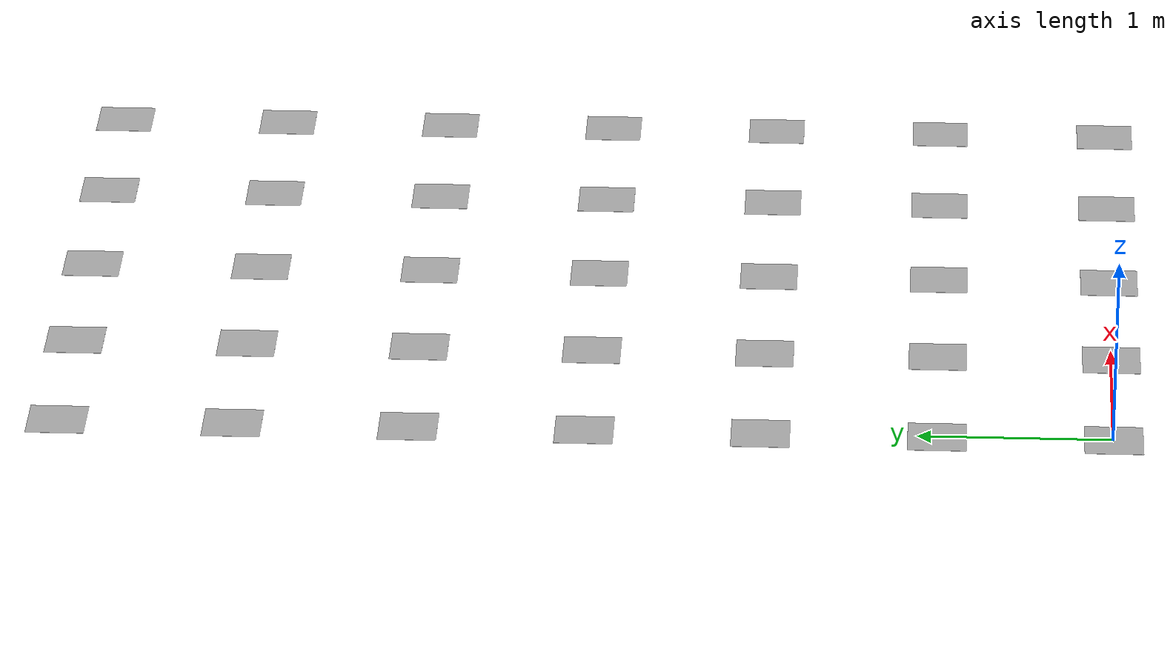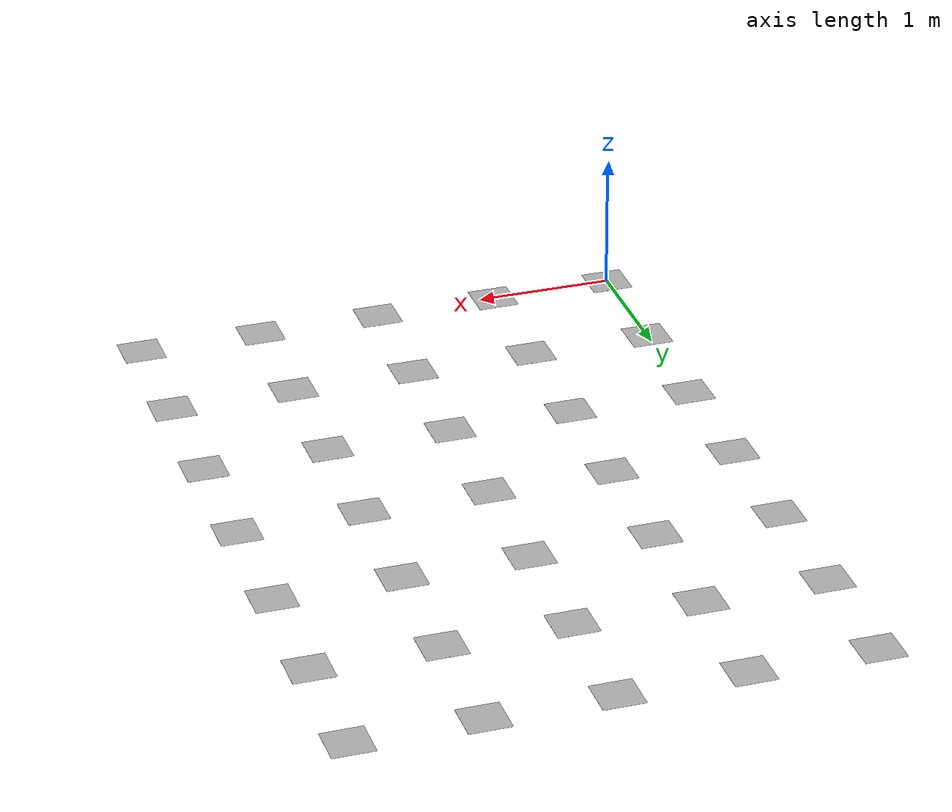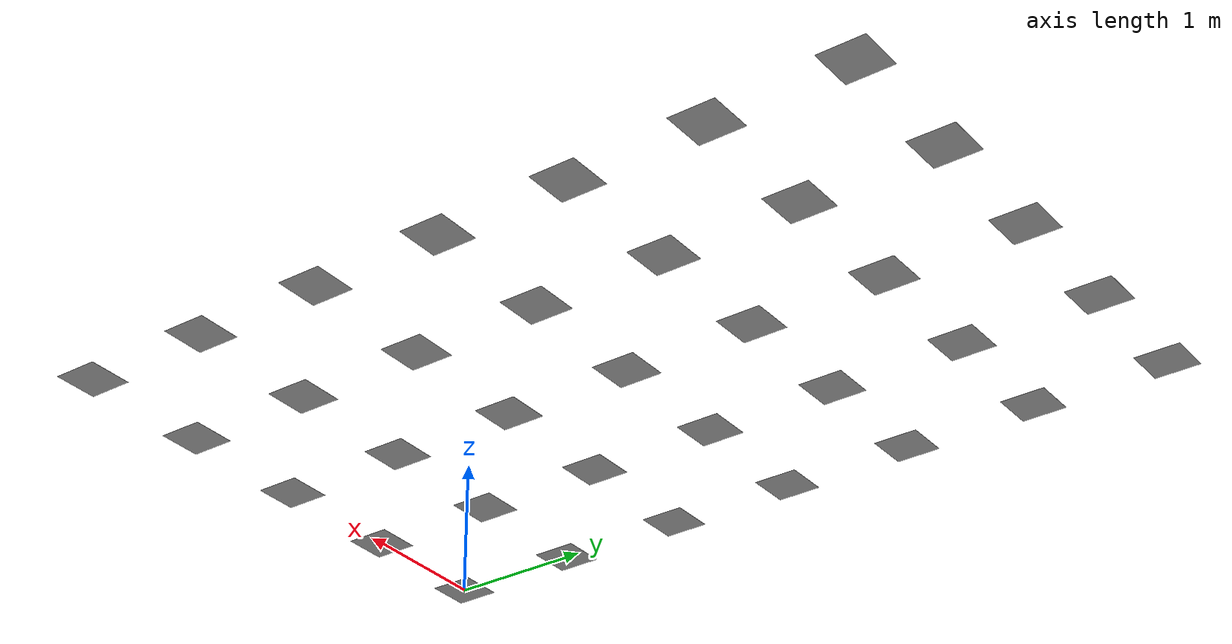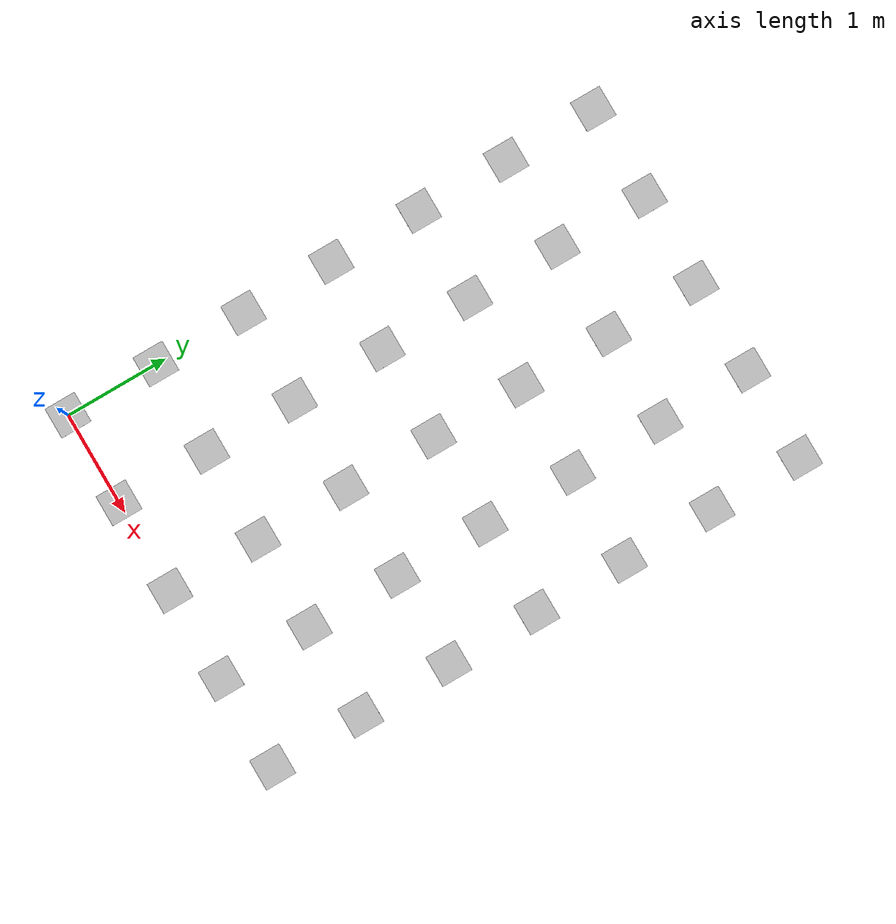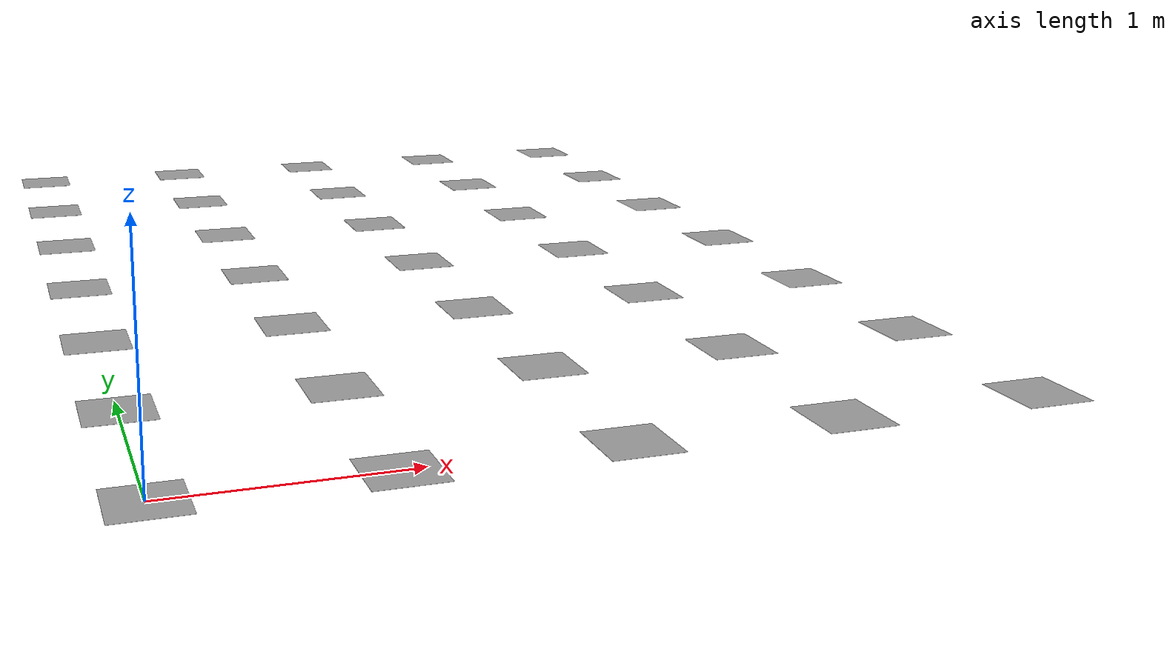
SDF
<?xml version="1.0"?>
<sdf version="1.5">
    <model name="aruco_2_99">
        <static>true</static>
        <link name="aruco_2_99_link">

<visual name="visual_marker_1">
    <pose>0.0 0.0 0.0 0.0 0.0 1.57079632679</pose>
    <cast_shadows>false</cast_shadows>
    <geometry>
        <box>
            <size>0.3 0.3 1e-3</size>
        </box>
    </geometry>
    <material>
        <script>
            <uri>model://aruco_cmit_txt/materials/scripts</uri>
            <uri>model://aruco_cmit_txt/materials/textures/</uri>
            <name>aruco/1</name>
        </script>
    </material>
</visual>

<visual name="visual_marker_2">
    <pose>0.9 0.0 0.0 0.0 0.0 1.57079632679</pose>
    <cast_shadows>false</cast_shadows>
    <geometry>
        <box>
            <size>0.3 0.3 1e-3</size>
        </box>
    </geometry>
    <material>
        <script>
            <uri>model://aruco_cmit_txt/materials/scripts</uri>
            <uri>model://aruco_cmit_txt/materials/textures</uri>
            <name>aruco/2</name>
        </script>
    </material>
</visual>

<visual name="visual_marker_3">
    <pose>1.8 0.0 0.0 0.0 0.0 1.57079632679</pose>
    <cast_shadows>false</cast_shadows>
    <geometry>
        <box>
            <size>0.3 0.3 1e-3</size>
        </box>
    </geometry>
    <material>
        <script>
            <uri>model://aruco_cmit_txt/materials/scripts</uri>
            <uri>model://aruco_cmit_txt/materials/textures</uri>
            <name>aruco/3</name>
        </script>
    </material>
</visual>

<visual name="visual_marker_4">
    <pose>2.7 0.0 0.0 0.0 0.0 1.57079632679</pose>
    <cast_shadows>false</cast_shadows>
    <geometry>
        <box>
            <size>0.3 0.3 1e-3</size>
        </box>
    </geometry>
    <material>
        <script>
            <uri>model://aruco_cmit_txt/materials/scripts</uri>
            <uri>model://aruco_cmit_txt/materials/textures</uri>
            <name>aruco/4</name>
        </script>
    </material>
</visual>

<visual name="visual_marker_5">
    <pose>3.6 0.0 0.0 0.0 0.0 1.57079632679</pose>
    <cast_shadows>false</cast_shadows>
    <geometry>
        <box>
            <size>0.3 0.3 1e-3</size>
        </box>
    </geometry>
    <material>
        <script>
            <uri>model://aruco_cmit_txt/materials/scripts</uri>
            <uri>model://aruco_cmit_txt/materials/textures</uri>
            <name>aruco/5</name>
        </script>
    </material>
</visual>

<visual name="visual_marker_6">
    <pose>0.0 0.9 0.0 0.0 0.0 1.57079632679</pose>
    <cast_shadows>false</cast_shadows>
    <geometry>
        <box>
            <size>0.3 0.3 1e-3</size>
        </box>
    </geometry>
    <material>
        <script>
            <uri>model://aruco_cmit_txt/materials/scripts</uri>
            <uri>model://aruco_cmit_txt/materials/textures</uri>
            <name>aruco/6</name>
        </script>
    </material>
</visual>

<visual name="visual_marker_7">
    <pose>0.9 0.9 0.0 0.0 0.0 1.57079632679</pose>
    <cast_shadows>false</cast_shadows>
    <geometry>
        <box>
            <size>0.3 0.3 1e-3</size>
        </box>
    </geometry>
    <material>
        <script>
            <uri>model://aruco_cmit_txt/materials/scripts</uri>
            <uri>model://aruco_cmit_txt/materials/textures</uri>
            <name>aruco/7</name>
        </script>
    </material>
</visual>

<visual name="visual_marker_8">
    <pose>1.8 0.9 0.0 0.0 0.0 1.57079632679</pose>
    <cast_shadows>false</cast_shadows>
    <geometry>
        <box>
            <size>0.3 0.3 1e-3</size>
        </box>
    </geometry>
    <material>
        <script>
            <uri>model://aruco_cmit_txt/materials/scripts</uri>
            <uri>model://aruco_cmit_txt/materials/textures</uri>
            <name>aruco/8</name>
        </script>
    </material>
</visual>

<visual name="visual_marker_9">
    <pose>2.7 0.9 0.0 0.0 0.0 1.57079632679</pose>
    <cast_shadows>false</cast_shadows>
    <geometry>
        <box>
            <size>0.3 0.3 1e-3</size>
        </box>
    </geometry>
    <material>
        <script>
            <uri>model://aruco_cmit_txt/materials/scripts</uri>
            <uri>model://aruco_cmit_txt/materials/textures</uri>
            <name>aruco/9</name>
        </script>
    </material>
</visual>

<visual name="visual_marker_10">
    <pose>3.6 0.9 0.0 0.0 0.0 1.57079632679</pose>
    <cast_shadows>false</cast_shadows>
    <geometry>
        <box>
            <size>0.3 0.3 1e-3</size>
        </box>
    </geometry>
    <material>
        <script>
            <uri>model://aruco_cmit_txt/materials/scripts</uri>
            <uri>model://aruco_cmit_txt/materials/textures</uri>
            <name>aruco/10</name>
        </script>
    </material>
</visual>

<visual name="visual_marker_11">
    <pose>0.0 1.8 0.0 0.0 0.0 1.57079632679</pose>
    <cast_shadows>false</cast_shadows>
    <geometry>
        <box>
            <size>0.3 0.3 1e-3</size>
        </box>
    </geometry>
    <material>
        <script>
            <uri>model://aruco_cmit_txt/materials/scripts</uri>
            <uri>model://aruco_cmit_txt/materials/textures</uri>
            <name>aruco/11</name>
        </script>
    </material>
</visual>

<visual name="visual_marker_12">
    <pose>0.9 1.8 0.0 0.0 0.0 1.57079632679</pose>
    <cast_shadows>false</cast_shadows>
    <geometry>
        <box>
            <size>0.3 0.3 1e-3</size>
        </box>
    </geometry>
    <material>
        <script>
            <uri>model://aruco_cmit_txt/materials/scripts</uri>
            <uri>model://aruco_cmit_txt/materials/textures</uri>
            <name>aruco/12</name>
        </script>
    </material>
</visual>

<visual name="visual_marker_13">
    <pose>1.8 1.8 0.0 0.0 0.0 1.57079632679</pose>
    <cast_shadows>false</cast_shadows>
    <geometry>
        <box>
            <size>0.3 0.3 1e-3</size>
        </box>
    </geometry>
    <material>
        <script>
            <uri>model://aruco_cmit_txt/materials/scripts</uri>
            <uri>model://aruco_cmit_txt/materials/textures</uri>
            <name>aruco/13</name>
        </script>
    </material>
</visual>

<visual name="visual_marker_14">
    <pose>2.7 1.8 0.0 0.0 0.0 1.57079632679</pose>
    <cast_shadows>false</cast_shadows>
    <geometry>
        <box>
            <size>0.3 0.3 1e-3</size>
        </box>
    </geometry>
    <material>
        <script>
            <uri>model://aruco_cmit_txt/materials/scripts</uri>
            <uri>model://aruco_cmit_txt/materials/textures</uri>
            <name>aruco/14</name>
        </script>
    </material>
</visual>

<visual name="visual_marker_15">
    <pose>3.6 1.8 0.0 0.0 0.0 1.57079632679</pose>
    <cast_shadows>false</cast_shadows>
    <geometry>
        <box>
            <size>0.3 0.3 1e-3</size>
        </box>
    </geometry>
    <material>
        <script>
            <uri>model://aruco_cmit_txt/materials/scripts</uri>
            <uri>model://aruco_cmit_txt/materials/textures</uri>
            <name>aruco/15</name>
        </script>
    </material>
</visual>

<visual name="visual_marker_16">
    <pose>0.0 2.7 0.0 0.0 0.0 1.57079632679</pose>
    <cast_shadows>false</cast_shadows>
    <geometry>
        <box>
            <size>0.3 0.3 1e-3</size>
        </box>
    </geometry>
    <material>
        <script>
            <uri>model://aruco_cmit_txt/materials/scripts</uri>
            <uri>model://aruco_cmit_txt/materials/textures</uri>
            <name>aruco/16</name>
        </script>
    </material>
</visual>

<visual name="visual_marker_17">
    <pose>0.9 2.7 0.0 0.0 0.0 1.57079632679</pose>
    <cast_shadows>false</cast_shadows>
    <geometry>
        <box>
            <size>0.3 0.3 1e-3</size>
        </box>
    </geometry>
    <material>
        <script>
            <uri>model://aruco_cmit_txt/materials/scripts</uri>
            <uri>model://aruco_cmit_txt/materials/textures</uri>
            <name>aruco/17</name>
        </script>
    </material>
</visual>

<visual name="visual_marker_18">
    <pose>1.8 2.7 0.0 0.0 0.0 1.57079632679</pose>
    <cast_shadows>false</cast_shadows>
    <geometry>
        <box>
            <size>0.3 0.3 1e-3</size>
        </box>
    </geometry>
    <material>
        <script>
            <uri>model://aruco_cmit_txt/materials/scripts</uri>
            <uri>model://aruco_cmit_txt/materials/textures</uri>
            <name>aruco/18</name>
        </script>
    </material>
</visual>

<visual name="visual_marker_19">
    <pose>2.7 2.7 0.0 0.0 0.0 1.57079632679</pose>
    <cast_shadows>false</cast_shadows>
    <geometry>
        <box>
            <size>0.3 0.3 1e-3</size>
        </box>
    </geometry>
    <material>
        <script>
            <uri>model://aruco_cmit_txt/materials/scripts</uri>
            <uri>model://aruco_cmit_txt/materials/textures</uri>
            <name>aruco/19</name>
        </script>
    </material>
</visual>

<visual name="visual_marker_20">
    <pose>3.6 2.7 0.0 0.0 0.0 1.57079632679</pose>
    <cast_shadows>false</cast_shadows>
    <geometry>
        <box>
            <size>0.3 0.3 1e-3</size>
        </box>
    </geometry>
    <material>
        <script>
            <uri>model://aruco_cmit_txt/materials/scripts</uri>
            <uri>model://aruco_cmit_txt/materials/textures</uri>
            <name>aruco/20</name>
        </script>
    </material>
</visual>

<visual name="visual_marker_21">
    <pose>0.0 3.6 0.0 0.0 0.0 1.57079632679</pose>
    <cast_shadows>false</cast_shadows>
    <geometry>
        <box>
            <size>0.3 0.3 1e-3</size>
        </box>
    </geometry>
    <material>
        <script>
            <uri>model://aruco_cmit_txt/materials/scripts</uri>
            <uri>model://aruco_cmit_txt/materials/textures/</uri>
            <name>aruco/21</name>
        </script>
    </material>
</visual>

<visual name="visual_marker_22">
    <pose>0.9 3.6 0.0 0.0 0.0 1.57079632679</pose>
    <cast_shadows>false</cast_shadows>
    <geometry>
        <box>
            <size>0.3 0.3 1e-3</size>
        </box>
    </geometry>
    <material>
        <script>
            <uri>model://aruco_cmit_txt/materials/scripts</uri>
            <uri>model://aruco_cmit_txt/materials/textures</uri>
            <name>aruco/22</name>
        </script>
    </material>
</visual>

<visual name="visual_marker_23">
    <pose>1.8 3.6 0.0 0.0 0.0 1.57079632679</pose>
    <cast_shadows>false</cast_shadows>
    <geometry>
        <box>
            <size>0.3 0.3 1e-3</size>
        </box>
    </geometry>
    <material>
        <script>
            <uri>model://aruco_cmit_txt/materials/scripts</uri>
            <uri>model://aruco_cmit_txt/materials/textures</uri>
            <name>aruco/23</name>
        </script>
    </material>
</visual>

<visual name="visual_marker_24">
    <pose>2.7 3.6 0.0 0.0 0.0 1.57079632679</pose>
    <cast_shadows>false</cast_shadows>
    <geometry>
        <box>
            <size>0.3 0.3 1e-3</size>
        </box>
    </geometry>
    <material>
        <script>
            <uri>model://aruco_cmit_txt/materials/scripts</uri>
            <uri>model://aruco_cmit_txt/materials/textures</uri>
            <name>aruco/24</name>
        </script>
    </material>
</visual>

<visual name="visual_marker_25">
    <pose>3.6 3.6 0.0 0.0 0.0 1.57079632679</pose>
    <cast_shadows>false</cast_shadows>
    <geometry>
        <box>
            <size>0.3 0.3 1e-3</size>
        </box>
    </geometry>
    <material>
        <script>
            <uri>model://aruco_cmit_txt/materials/scripts</uri>
            <uri>model://aruco_cmit_txt/materials/textures</uri>
            <name>aruco/25</name>
        </script>
    </material>
</visual>

<visual name="visual_marker_26">
    <pose>0.0 4.5 0.0 0.0 0.0 1.57079632679</pose>
    <cast_shadows>false</cast_shadows>
    <geometry>
        <box>
            <size>0.3 0.3 1e-3</size>
        </box>
    </geometry>
    <material>
        <script>
            <uri>model://aruco_cmit_txt/materials/scripts</uri>
            <uri>model://aruco_cmit_txt/materials/textures/</uri>
            <name>aruco/26</name>
        </script>
    </material>
</visual>

<visual name="visual_marker_27">
    <pose>0.9 4.5 0.0 0.0 0.0 1.57079632679</pose>
    <cast_shadows>false</cast_shadows>
    <geometry>
        <box>
            <size>0.3 0.3 1e-3</size>
        </box>
    </geometry>
    <material>
        <script>
            <uri>model://aruco_cmit_txt/materials/scripts</uri>
            <uri>model://aruco_cmit_txt/materials/textures</uri>
            <name>aruco/27</name>
        </script>
    </material>
</visual>

<visual name="visual_marker_28">
    <pose>1.8 4.5 0.0 0.0 0.0 1.57079632679</pose>
    <cast_shadows>false</cast_shadows>
    <geometry>
        <box>
            <size>0.3 0.3 1e-3</size>
        </box>
    </geometry>
    <material>
        <script>
            <uri>model://aruco_cmit_txt/materials/scripts</uri>
            <uri>model://aruco_cmit_txt/materials/textures</uri>
            <name>aruco/28</name>
        </script>
    </material>
</visual>

<visual name="visual_marker_29">
    <pose>2.7 4.5 0.0 0.0 0.0 1.57079632679</pose>
    <cast_shadows>false</cast_shadows>
    <geometry>
        <box>
            <size>0.3 0.3 1e-3</size>
        </box>
    </geometry>
    <material>
        <script>
            <uri>model://aruco_cmit_txt/materials/scripts</uri>
            <uri>model://aruco_cmit_txt/materials/textures</uri>
            <name>aruco/29</name>
        </script>
    </material>
</visual>

<visual name="visual_marker_30">
    <pose>3.6 4.5 0.0 0.0 0.0 1.57079632679</pose>
    <cast_shadows>false</cast_shadows>
    <geometry>
        <box>
            <size>0.3 0.3 1e-3</size>
        </box>
    </geometry>
    <material>
        <script>
            <uri>model://aruco_cmit_txt/materials/scripts</uri>
            <uri>model://aruco_cmit_txt/materials/textures</uri>
            <name>aruco/30</name>
        </script>
    </material>
</visual>

<visual name="visual_marker_31">
    <pose>0.0 5.4 0.0 0.0 0.0 1.57079632679</pose>
    <cast_shadows>false</cast_shadows>
    <geometry>
        <box>
            <size>0.3 0.3 1e-3</size>
        </box>
    </geometry>
    <material>
        <script>
            <uri>model://aruco_cmit_txt/materials/scripts</uri>
            <uri>model://aruco_cmit_txt/materials/textures/</uri>
            <name>aruco/31</name>
        </script>
    </material>
</visual>

<visual name="visual_marker_32">
    <pose>0.9 5.4 0.0 0.0 0.0 1.57079632679</pose>
    <cast_shadows>false</cast_shadows>
    <geometry>
        <box>
            <size>0.3 0.3 1e-3</size>
        </box>
    </geometry>
    <material>
        <script>
            <uri>model://aruco_cmit_txt/materials/scripts</uri>
            <uri>model://aruco_cmit_txt/materials/textures</uri>
            <name>aruco/32</name>
        </script>
    </material>
</visual>

<visual name="visual_marker_33">
    <pose>1.8 5.4 0.0 0.0 0.0 1.57079632679</pose>
    <cast_shadows>false</cast_shadows>
    <geometry>
        <box>
            <size>0.3 0.3 1e-3</size>
        </box>
    </geometry>
    <material>
        <script>
            <uri>model://aruco_cmit_txt/materials/scripts</uri>
            <uri>model://aruco_cmit_txt/materials/textures</uri>
            <name>aruco/33</name>
        </script>
    </material>
</visual>

<visual name="visual_marker_34">
    <pose>2.7 5.4 0.0 0.0 0.0 1.57079632679</pose>
    <cast_shadows>false</cast_shadows>
    <geometry>
        <box>
            <size>0.3 0.3 1e-3</size>
        </box>
    </geometry>
    <material>
        <script>
            <uri>model://aruco_cmit_txt/materials/scripts</uri>
            <uri>model://aruco_cmit_txt/materials/textures</uri>
            <name>aruco/34</name>
        </script>
    </material>
</visual>

<visual name="visual_marker_35">
    <pose>3.6 5.4 0.0 0.0 0.0 1.57079632679</pose>
    <cast_shadows>false</cast_shadows>
    <geometry>
        <box>
            <size>0.3 0.3 1e-3</size>
        </box>
    </geometry>
    <material>
        <script>
            <uri>model://aruco_cmit_txt/materials/scripts</uri>
            <uri>model://aruco_cmit_txt/materials/textures</uri>
            <name>aruco/35</name>
        </script>
    </material>
</visual>

        </link>
    </model>
</sdf>
